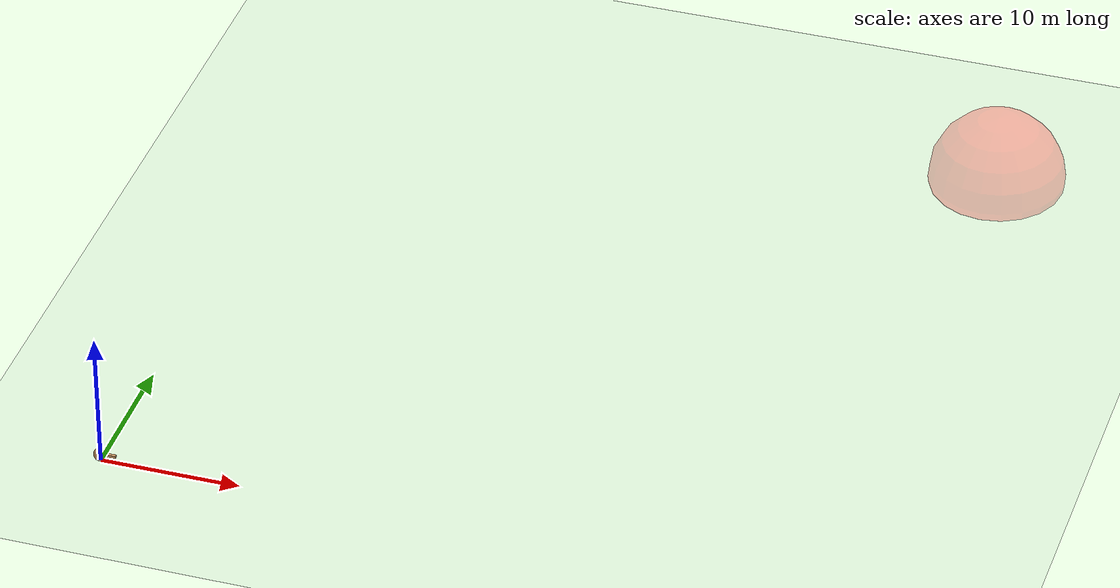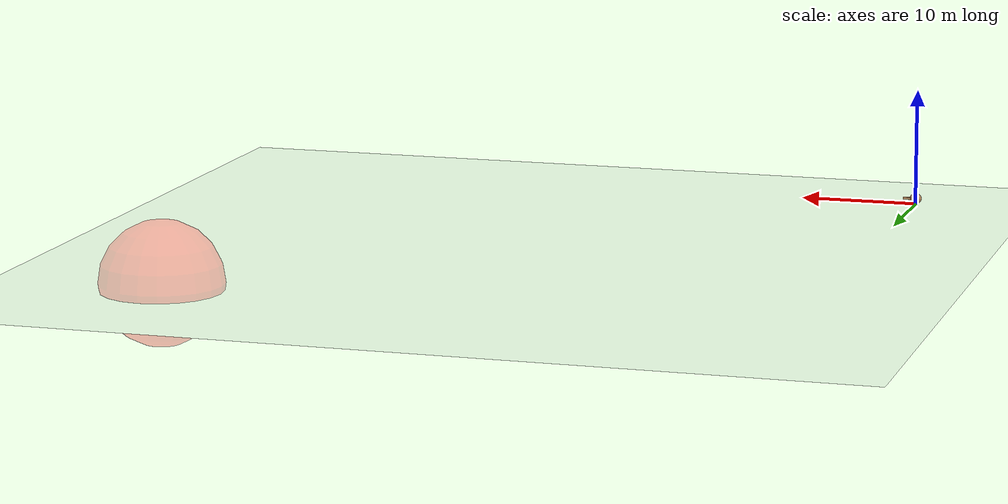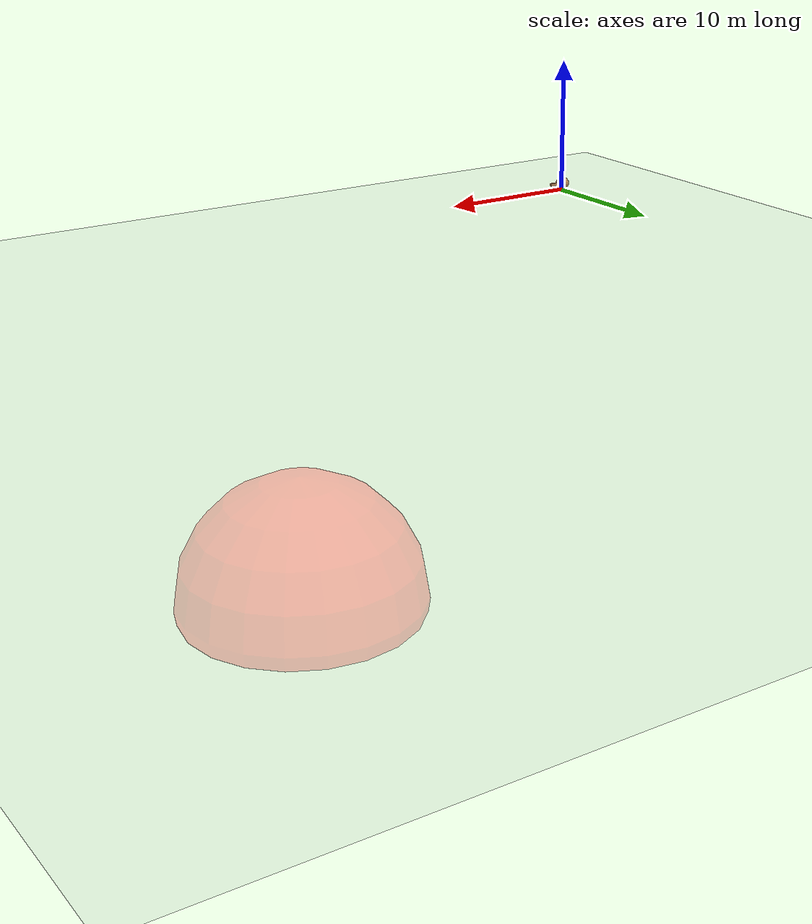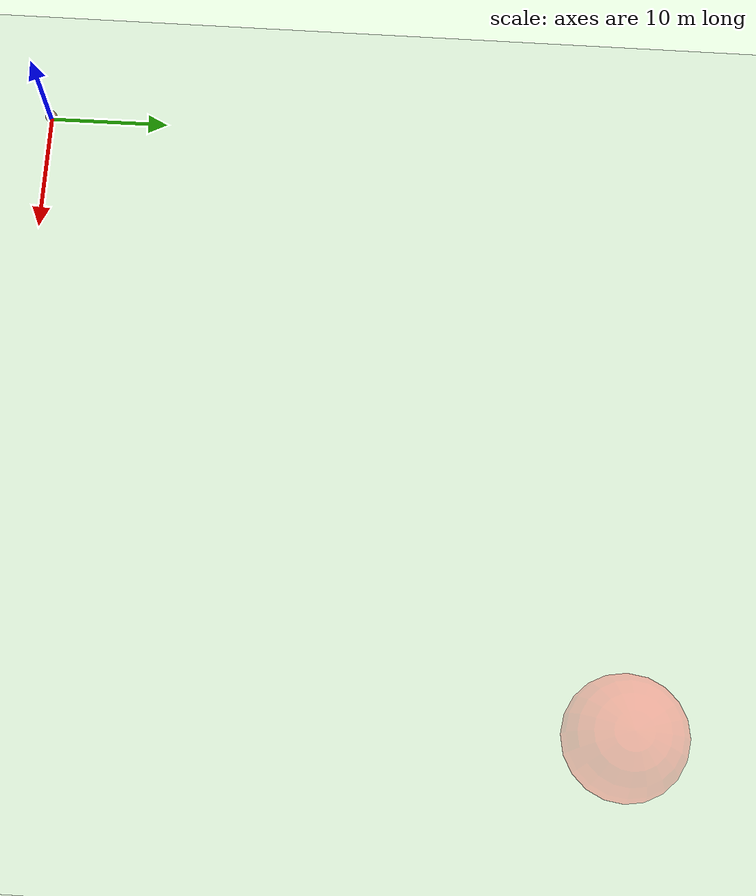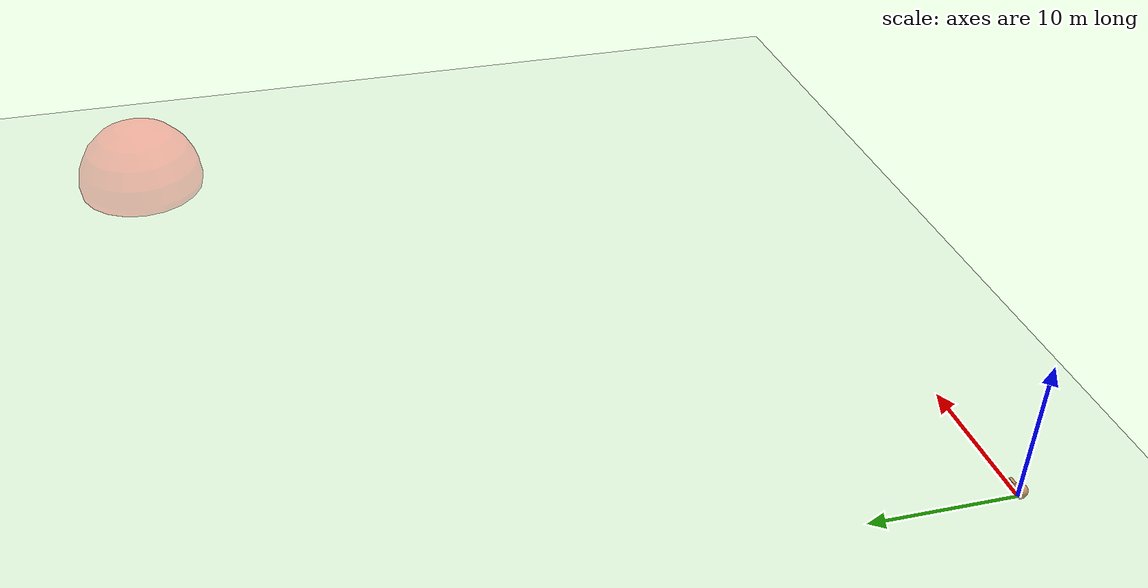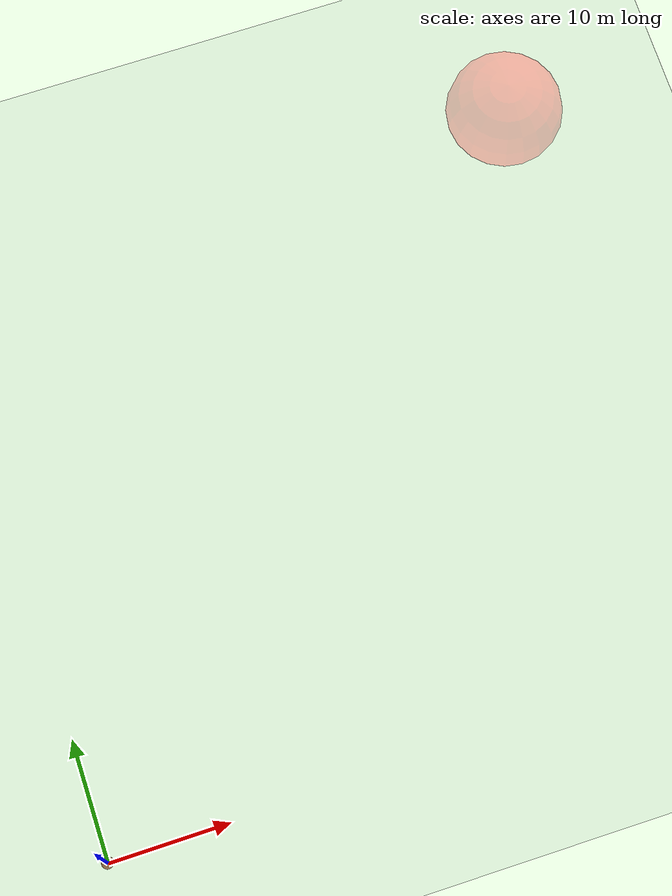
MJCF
<mujoco>
  <compiler angle="degree" coordinate="local" inertiafromgeom="true"/>
  <option integrator="RK4" timestep="0.02"/>
  <default>
    <joint armature="0" damping="0" limited="false"/>
    <geom conaffinity="0" condim="3" density="100" friction="1 0.5 0.5" margin="0" rgba="0.8 0.6 0.4 1"/>
  </default>
  <asset>
    <texture builtin="gradient" height="100" rgb1="1 1 1" rgb2="0 0 0" type="skybox" width="100"/>
    <texture builtin="flat" height="1278" mark="cross" markrgb="1 1 1" name="texgeom" random="0.01" rgb1="0.8 0.6 0.4" rgb2="0.8 0.6 0.4" type="cube" width="127"/>
    <texture builtin="checker" height="100" name="texplane" rgb1="0 0 0" rgb2="0.8 0.8 0.8" type="2d" width="100"/>
    <material name="MatPlane" reflectance="0.5" shininess="1" specular="1" texrepeat="30 30" texture="texplane"/>
    <material name="geom" texture="texgeom" texuniform="true"/>
  </asset>
  <worldbody>
    <light cutoff="100" diffuse="1 1 1" dir="-0 0 -1.3" directional="true" exponent="1" pos="0 0 1.3" specular=".1 .1 .1"/>
    <geom name='floor' pos='0 0 0' size='300 300 300' type='plane' conaffinity='1' rgba='0.8 0.9 0.8 1' condim='3' />
          <site name="goal" pos="50 50 0.5" size="5 5 5" rgba="1 0 0 0.3" type="sphere"></site>
    <body name="torso" pos="0 0 0">
      <geom name="pointbody" pos="0 0 0.5" size="0.5" type="sphere"/>
      <geom name="pointarrow" pos="0.6 0 0.5" size="0.5 0.1 0.1" type="box"/>
      <joint axis="1 0 0" name="ballx" pos="0 0 0" type="slide"/>
      <joint axis="0 1 0" name="bally" pos="0 0 0" type="slide"/>
      <joint axis="0 0 1" limited="false" name="rot" pos="0 0 0" type="hinge"/>
    </body>
  </worldbody>
  <actuator>
    <!-- Those are just dummy actuators for providing ranges -->
    <motor ctrllimited="true" ctrlrange="-1 1" joint="ballx"/>
    <motor ctrllimited="true" ctrlrange="-0.25 0.25" joint="rot"/>
  </actuator>
</mujoco>
